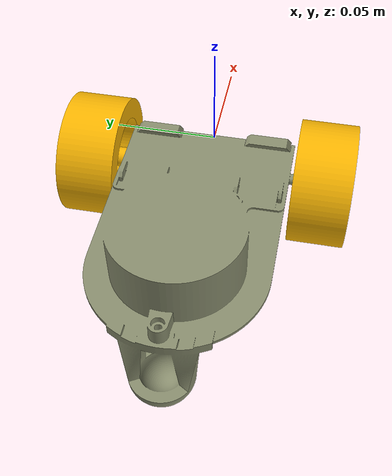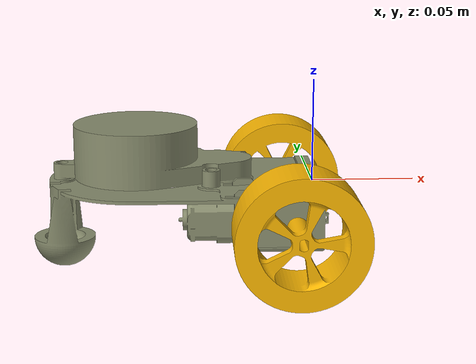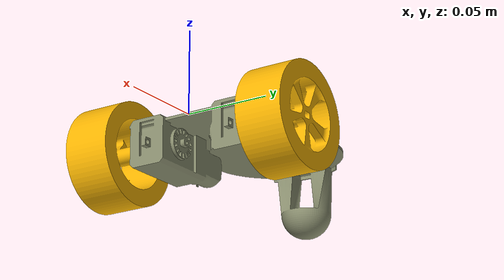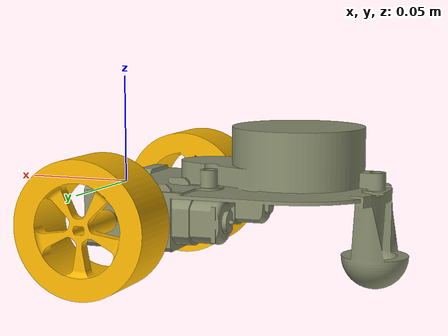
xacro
<?xml version="1.0"?>
<!-- Basic differential drive mobile base -->
<robot xmlns:xacro="http://www.ros.org/wiki/xacro" name="little_red_rover">
	<xacro:include
		filename="$(find little_red_rover)/description/rover/robot.urdf" />

	<!-- Import diffbot ros2_control description -->

</robot>

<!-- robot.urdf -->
<robot name="little red rover">
<link name="base_link"></link>
<joint name="base_link_to_base" type="fixed">
<parent link="base_link"/>
<child link="robot_body" />
<origin rpy="0.0 0 0" xyz="0 0 0"/>
</joint>
<link name="robot_body">
<collision>
<origin xyz="-0.086199999999999998845 -1.2143064331837649661e-17 0.0015000000000000004649" rpy="-1.5265566588595798893e-16 7.9502388104304675625e-31 1.3033732703949976057e-30" />
<geometry>
<mesh filename="http://localhost:8100/skid.stl"/>
</geometry>
</collision>
<collision>
<origin xyz="-0.086200000000000831513 3.8163916471489756077e-17 0.0015000000000000050186" rpy="-4.5796699765786721216e-16 2.3850716431291444726e-30 3.9101198111849427206e-30" />
<geometry>
<mesh filename="http://localhost:8100/motor_mount_shim.stl"/>
</geometry>
</collision>
<collision>
<origin xyz="-0.011299999999997131783 -0.027749999999999875461 -0.011370000000000199392" rpy="-3.141592653589793116 -1.570796326794896336 0" />
<geometry>
<mesh filename="http://localhost:8100/tt_motor_mount.stl"/>
</geometry>
</collision>
<collision>
<origin xyz="-0.011199999999997016162 0.027799999999999876893 -0.011370000000000324292" rpy="-3.141592653589793116 -1.570796326794896558 0" />
<geometry>
<mesh filename="http://localhost:8100/encoder_ring.stl"/>
</geometry>
</collision>
<collision>
<origin xyz="-0.086199999999998500044 -2.8671509610944468173e-17 0.0015000000000000811295" rpy="4.9303806576311792749e-32 3.5032461608119399976e-46 8.6361685550939383751e-78" />
<geometry>
<mesh filename="http://localhost:8100/lidar_motor.stl"/>
</geometry>
</collision>
<collision>
<origin xyz="-0.086199999999999984968 -1.0408340855860842566e-17 0.0025000000000000126288" rpy="3.141592653589793116 7.9502388104304675625e-31 1.3033732703949976057e-30" />
<geometry>
<mesh filename="http://localhost:8100/motor_mount_shim.stl"/>
</geometry>
</collision>
<collision>
<origin xyz="-0.011199999999997394332 -0.027649999999999903821 -0.011370000000000003368" rpy="2.6530262401855620664e-29 1.5707963267948961139 0" />
<geometry>
<mesh filename="http://localhost:8100/encoder_ring.stl"/>
</geometry>
</collision>
<collision>
<origin xyz="-0.011299999999997145661 0.027699999999999894845 -0.011370000000000225412" rpy="3.141592653589793116 -1.570796326794896336 0" />
<geometry>
<mesh filename="http://localhost:8100/tt_motor_mount.stl"/>
</geometry>
</collision>
<collision>
<origin xyz="-0.086199999999999998845 -1.0408340855860842566e-17 0.0014999999999999995975" rpy="-1.5265566588595798893e-16 7.9502388104304675625e-31 1.3033732703949976057e-30" />
<geometry>
<mesh filename="http://localhost:8100/pcb.stl"/>
</geometry>
</collision>
<collision>
<origin xyz="-0.086200000000000026601 -2.7755575615628913511e-17 0.0015000000000000013323" rpy="-4.5796699765786721216e-16 2.3850716431291444726e-30 3.9101198111849427206e-30" />
<geometry>
<mesh filename="http://localhost:8100/lidar_top.stl"/>
</geometry>
</collision>
<collision>
<origin xyz="-0.011199999999997016162 0.027799999999999876893 -0.011370000000000324292" rpy="-6.9068277805714204522e-29 1.570796326794896558 0" />
<geometry>
<mesh filename="http://localhost:8100/tt_motor_3777_v10.stl"/>
</geometry>
</collision>
<collision>
<origin xyz="-0.011199999999997016162 0.027799999999999876893 -0.011370000000000324292" rpy="-6.9068277805714204522e-29 1.570796326794896558 0" />
<geometry>
<mesh filename="http://localhost:8100/tt_motor_3777_v10.stl"/>
</geometry>
</collision>
<collision>
<origin xyz="-0.011199999999997016162 0.027799999999999876893 -0.011370000000000324292" rpy="-6.9068277805714204522e-29 1.570796326794896558 0" />
<geometry>
<mesh filename="http://localhost:8100/tt_motor_3777_v10.stl"/>
</geometry>
</collision>
<collision>
<origin xyz="-0.011199999999997016162 0.027799999999999876893 -0.011370000000000324292" rpy="-6.9068277805714204522e-29 1.570796326794896558 0" />
<geometry>
<mesh filename="http://localhost:8100/tt_motor_3777_v10.stl"/>
</geometry>
</collision>
<collision>
<origin xyz="-0.011199999999997016162 0.027799999999999876893 -0.011370000000000324292" rpy="-6.9068277805714204522e-29 1.570796326794896558 0" />
<geometry>
<mesh filename="http://localhost:8100/tt_motor_3777_v10.stl"/>
</geometry>
</collision>
<collision>
<origin xyz="-0.011199999999997016162 0.027799999999999876893 -0.011370000000000324292" rpy="-6.9068277805714204522e-29 1.570796326794896558 0" />
<geometry>
<mesh filename="http://localhost:8100/tt_motor_3777_v10.stl"/>
</geometry>
</collision>
<collision>
<origin xyz="-0.011199999999997016162 0.027799999999999876893 -0.011370000000000324292" rpy="-6.9068277805714204522e-29 1.570796326794896558 0" />
<geometry>
<mesh filename="http://localhost:8100/tt_motor_3777_v10.stl"/>
</geometry>
</collision>
<collision>
<origin xyz="-0.011199999999997016162 0.027799999999999876893 -0.011370000000000324292" rpy="-6.9068277805714204522e-29 1.570796326794896558 0" />
<geometry>
<mesh filename="http://localhost:8100/tt_motor_3777_v10.stl"/>
</geometry>
</collision>
<collision>
<origin xyz="-0.011199999999997394332 -0.027649999999999862188 -0.011369999999999999898" rpy="3.141592653589793116 -1.570796326794896558 0" />
<geometry>
<mesh filename="http://localhost:8100/tt_motor_3777_v10.stl"/>
</geometry>
</collision>
<collision>
<origin xyz="-0.011199999999997394332 -0.027649999999999862188 -0.011369999999999999898" rpy="3.141592653589793116 -1.570796326794896558 0" />
<geometry>
<mesh filename="http://localhost:8100/tt_motor_3777_v10.stl"/>
</geometry>
</collision>
<collision>
<origin xyz="-0.011199999999997394332 -0.027649999999999862188 -0.011369999999999999898" rpy="3.141592653589793116 -1.570796326794896558 0" />
<geometry>
<mesh filename="http://localhost:8100/tt_motor_3777_v10.stl"/>
</geometry>
</collision>
<collision>
<origin xyz="-0.011199999999997394332 -0.027649999999999862188 -0.011369999999999999898" rpy="3.141592653589793116 -1.570796326794896558 0" />
<geometry>
<mesh filename="http://localhost:8100/tt_motor_3777_v10.stl"/>
</geometry>
</collision>
<collision>
<origin xyz="-0.011199999999997394332 -0.027649999999999862188 -0.011369999999999999898" rpy="3.141592653589793116 -1.570796326794896558 0" />
<geometry>
<mesh filename="http://localhost:8100/tt_motor_3777_v10.stl"/>
</geometry>
</collision>
<collision>
<origin xyz="-0.011199999999997394332 -0.027649999999999862188 -0.011369999999999999898" rpy="3.141592653589793116 -1.570796326794896558 0" />
<geometry>
<mesh filename="http://localhost:8100/tt_motor_3777_v10.stl"/>
</geometry>
</collision>
<collision>
<origin xyz="-0.011199999999997394332 -0.027649999999999862188 -0.011369999999999999898" rpy="3.141592653589793116 -1.570796326794896558 0" />
<geometry>
<mesh filename="http://localhost:8100/tt_motor_3777_v10.stl"/>
</geometry>
</collision>
<collision>
<origin xyz="-0.011199999999997394332 -0.027649999999999862188 -0.011369999999999999898" rpy="3.141592653589793116 -1.570796326794896558 0" />
<geometry>
<mesh filename="http://localhost:8100/tt_motor_3777_v10.stl"/>
</geometry>
</collision>
<visual>
<origin xyz="0 0 0" rpy="0 -0 0" />
<geometry>
<mesh filename="http://localhost:8100/robot_body_visual.stl"/>
</geometry>
<material name="robot_body_material">
<color rgba="0.5367631145567938189 0.5544912545973401663 0.43199857592845941623 1.0"/>
</material>
</visual>
<inertial>
<origin xyz="-0.061845236849630697007 1.9311688626235378743e-05 0.0010887156206689954478" rpy="0 0 0"/>
<mass value="0.19676137874980109688" />
<inertia ixx="0.00012993268070770976519" ixy="-1.0736949394674406614e-07"  ixz="4.0258881692539616036e-05" iyy="0.00027944256073959291382" iyz="4.6368993948478567085e-08" izz="0.00031665653380701780633" />
</inertial>
</link>

<link name="wheel">
<collision>
<origin xyz="-1.7347234759768070944e-18 3.4694469519536141888e-18 -0.027940000000000006497" rpy="4.5323247205505802138e-45 -0 0" />
<geometry>
<mesh filename="http://localhost:8100/wheel.stl"/>
</geometry>
</collision>
<visual>
<origin xyz="0 0 0" rpy="0 -0 0" />
<geometry>
<mesh filename="http://localhost:8100/wheel_visual.stl"/>
</geometry>
<material name="wheel_material">
<color rgba="0.98039215686274505668 0.71372549019607844922 0.0039215686274509803377 1.0"/>
</material>
</visual>
<inertial>
<origin xyz="-2.4618423152424543275e-17 5.2761051152944761798e-17 -0.014337453204997982134" rpy="0 0 0"/>
<mass value="0.060316879417403129748" />
<inertia ixx="2.3131869643683833067e-05" ixy="0"  ixz="0" iyy="2.3131206012492695268e-05" iyz="8.3445100702762712003e-50" izz="3.8316124169634600165e-05" />
</inertial>
</link>

<joint name="wheel_right_speed" type="continuous">
<origin xyz="-0.011199999999997394332 -0.043149999999999869016 -0.011370000000000001633" rpy="-1.570796326794896558 -1.570796326794896336 0" />
<parent link="robot_body" />
<child link="wheel" />
<axis xyz="0 0 1"/>
<limit effort="1" velocity="20" />
<joint_properties friction="0.0"/>
</joint>

<link name="wheel_2">
<collision>
<origin xyz="0 -1.7347234759768070944e-18 0.027940000000000020375" rpy="3.141592653589793116 -1.019518080370513794e-45 0" />
<geometry>
<mesh filename="http://localhost:8100/wheel.stl"/>
</geometry>
</collision>
<visual>
<origin xyz="0 0 0" rpy="0 -0 0" />
<geometry>
<mesh filename="http://localhost:8100/wheel_2_visual.stl"/>
</geometry>
<material name="wheel_2_material">
<color rgba="0.98039215686274505668 0.71372549019607844922 0.0039215686274509803377 1.0"/>
</material>
</visual>
<inertial>
<origin xyz="-2.288369967644773618e-17 -5.1026327676967954704e-17 0.014337453204997996012" rpy="0 0 0"/>
<mass value="0.060316879417403129748" />
<inertia ixx="2.3131869643683833067e-05" ixy="0"  ixz="6.264734069517384396e-50" iyy="2.3131206012492695268e-05" iyz="0" izz="3.8316124169634600165e-05" />
</inertial>
</link>

<joint name="wheel_left_speed" type="continuous">
<origin xyz="-0.011199999999997016162 0.043299999999999880251 -0.011370000000000322557" rpy="1.5707963267948970021 -2.2261824227171183414e-30 3.141592653589793116" />
<parent link="robot_body" />
<child link="wheel_2" />
<axis xyz="0 0 1"/>
<limit effort="1" velocity="20" />
<joint_properties friction="0.0"/>
</joint>

</robot>
